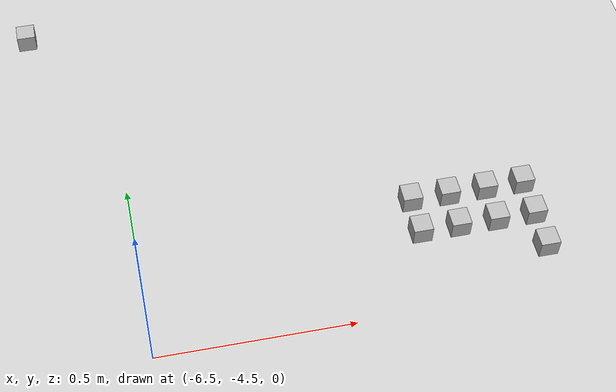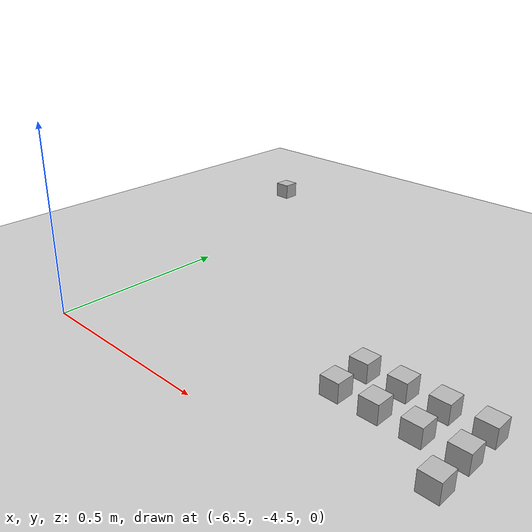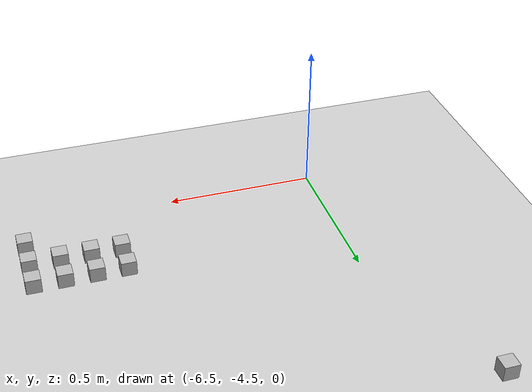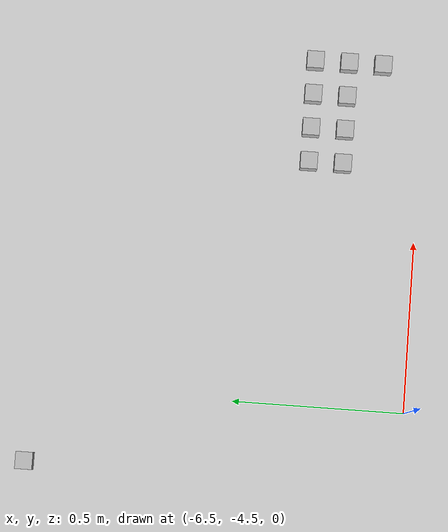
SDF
<sdf version="1.6">
 <world name="default">
  <model name="ground_plane">
   <static>1</static>
   <link name="link">
    <collision name="collision">
     <geometry><plane><normal>0 0 1</normal><size>100 100</size></plane></geometry>
     <surface><friction><ode><mu>100</mu><mu2>50</mu2></ode></friction></surface>
    </collision>
    <visual name="visual">
     <cast_shadows>0</cast_shadows>
     <geometry><plane><normal>0 0 1</normal><size>100 100</size></plane></geometry>
     <material>
      <script><uri>file://media/materials/scripts/gazebo.material</uri><name>Gazebo/Grey</name></script>
     </material>
    </visual>
   </link>
  </model>
  <model name="at55">
   <static>0</static>
   <link name="link">
    <inertial>
     <mass>0.01</mass>
     <inertia><ixx>4e-05</ixx><ixy>0</ixy><ixz>0</ixz><iyy>4e-05</iyy><iyz>0</iyz><izz>4e-05</izz></inertia>
    </inertial>
    <visual name="visual">
     <geometry><box><size>0.05 0.05 0.05</size></box></geometry>
     <material>
      <script>
       <uri>model://at0/materials/scripts</uri>
       <uri>model://at0/materials/textures</uri>
       <name>at0/Diffuse</name>
      </script>
     </material>
    </visual>
    <collision name="collision">
     <geometry><box><size>0.05 0.05 0.05</size></box></geometry>
     <surface><friction><ode><mu>0.8</mu><mu2>0.7</mu2></ode></friction></surface>
    </collision>
   </link>
   <pose>-5.48237 -4.37573 0.025 0 -0 0</pose>
  </model>
  <model name="at56">
   <static>0</static>
   <link name="link">
    <inertial>
     <mass>0.01</mass>
     <inertia><ixx>4e-05</ixx><ixy>0</ixy><ixz>0</ixz><iyy>4e-05</iyy><iyz>0</iyz><izz>4e-05</izz></inertia>
    </inertial>
    <visual name="visual">
     <geometry><box><size>0.05 0.05 0.05</size></box></geometry>
     <material>
      <script>
       <uri>model://at0/materials/scripts</uri>
       <uri>model://at0/materials/textures</uri>
       <name>at0/Diffuse</name>
      </script>
     </material>
    </visual>
    <collision name="collision">
     <geometry><box><size>0.05 0.05 0.05</size></box></geometry>
     <surface><friction><ode><mu>0.8</mu><mu2>0.7</mu2></ode></friction></surface>
    </collision>
   </link>
   <pose>-5.78237 -4.27573 0.025 0 -0 0</pose>
  </model>
  <model name="at57">
   <static>0</static>
   <link name="link">
    <inertial>
     <mass>0.01</mass>
     <inertia><ixx>4e-05</ixx><ixy>0</ixy><ixz>0</ixz><iyy>4e-05</iyy><iyz>0</iyz><izz>4e-05</izz></inertia>
    </inertial>
    <visual name="visual">
     <geometry><box><size>0.05 0.05 0.05</size></box></geometry>
     <material>
      <script>
       <uri>model://at0/materials/scripts</uri>
       <uri>model://at0/materials/textures</uri>
       <name>at0/Diffuse</name>
      </script>
     </material>
    </visual>
    <collision name="collision">
     <geometry><box><size>0.05 0.05 0.05</size></box></geometry>
     <surface><friction><ode><mu>0.8</mu><mu2>0.7</mu2></ode></friction></surface>
    </collision>
   </link>
   <pose>-5.68237 -4.27573 0.025 0 -0 0</pose>
  </model>
  <model name="at58">
   <static>0</static>
   <link name="link">
    <inertial>
     <mass>0.01</mass>
     <inertia><ixx>4e-05</ixx><ixy>0</ixy><ixz>0</ixz><iyy>4e-05</iyy><iyz>0</iyz><izz>4e-05</izz></inertia>
    </inertial>
    <visual name="visual">
     <geometry><box><size>0.05 0.05 0.05</size></box></geometry>
     <material>
      <script>
       <uri>model://at0/materials/scripts</uri>
       <uri>model://at0/materials/textures</uri>
       <name>at0/Diffuse</name>
      </script>
     </material>
    </visual>
    <collision name="collision">
     <geometry><box><size>0.05 0.05 0.05</size></box></geometry>
     <surface><friction><ode><mu>0.8</mu><mu2>0.7</mu2></ode></friction></surface>
    </collision>
   </link>
   <pose>-5.58237 -4.27573 0.025 0 -0 0</pose>
  </model>
  <model name="at59">
   <static>0</static>
   <link name="link">
    <inertial>
     <mass>0.01</mass>
     <inertia><ixx>4e-05</ixx><ixy>0</ixy><ixz>0</ixz><iyy>4e-05</iyy><iyz>0</iyz><izz>4e-05</izz></inertia>
    </inertial>
    <visual name="visual">
     <geometry><box><size>0.05 0.05 0.05</size></box></geometry>
     <material>
      <script>
       <uri>model://at0/materials/scripts</uri>
       <uri>model://at0/materials/textures</uri>
       <name>at0/Diffuse</name>
      </script>
     </material>
    </visual>
    <collision name="collision">
     <geometry><box><size>0.05 0.05 0.05</size></box></geometry>
     <surface><friction><ode><mu>0.8</mu><mu2>0.7</mu2></ode></friction></surface>
    </collision>
   </link>
   <pose>-5.48237 -4.27573 0.025 0 -0 0</pose>
  </model>
  <model name="at60">
   <static>0</static>
   <link name="link">
    <inertial>
     <mass>0.01</mass>
     <inertia><ixx>4e-05</ixx><ixy>0</ixy><ixz>0</ixz><iyy>4e-05</iyy><iyz>0</iyz><izz>4e-05</izz></inertia>
    </inertial>
    <visual name="visual">
     <geometry><box><size>0.05 0.05 0.05</size></box></geometry>
     <material>
      <script>
       <uri>model://at0/materials/scripts</uri>
       <uri>model://at0/materials/textures</uri>
       <name>at0/Diffuse</name>
      </script>
     </material>
    </visual>
    <collision name="collision">
     <geometry><box><size>0.05 0.05 0.05</size></box></geometry>
     <surface><friction><ode><mu>0.8</mu><mu2>0.7</mu2></ode></friction></surface>
    </collision>
   </link>
   <pose>-5.78237 -4.17573 0.025 0 -0 0</pose>
  </model>
  <model name="at61">
   <static>0</static>
   <link name="link">
    <inertial>
     <mass>0.01</mass>
     <inertia><ixx>4e-05</ixx><ixy>0</ixy><ixz>0</ixz><iyy>4e-05</iyy><iyz>0</iyz><izz>4e-05</izz></inertia>
    </inertial>
    <visual name="visual">
     <geometry><box><size>0.05 0.05 0.05</size></box></geometry>
     <material>
      <script>
       <uri>model://at0/materials/scripts</uri>
       <uri>model://at0/materials/textures</uri>
       <name>at0/Diffuse</name>
      </script>
     </material>
    </visual>
    <collision name="collision">
     <geometry><box><size>0.05 0.05 0.05</size></box></geometry>
     <surface><friction><ode><mu>0.8</mu><mu2>0.7</mu2></ode></friction></surface>
    </collision>
   </link>
   <pose>-5.68237 -4.17573 0.025 0 -0 0</pose>
  </model>
  <model name="at62">
   <static>0</static>
   <link name="link">
    <inertial>
     <mass>0.01</mass>
     <inertia><ixx>4e-05</ixx><ixy>0</ixy><ixz>0</ixz><iyy>4e-05</iyy><iyz>0</iyz><izz>4e-05</izz></inertia>
    </inertial>
    <visual name="visual">
     <geometry><box><size>0.05 0.05 0.05</size></box></geometry>
     <material>
      <script>
       <uri>model://at0/materials/scripts</uri>
       <uri>model://at0/materials/textures</uri>
       <name>at0/Diffuse</name>
      </script>
     </material>
    </visual>
    <collision name="collision">
     <geometry><box><size>0.05 0.05 0.05</size></box></geometry>
     <surface><friction><ode><mu>0.8</mu><mu2>0.7</mu2></ode></friction></surface>
    </collision>
   </link>
   <pose>-5.58237 -4.17573 0.025 0 -0 0</pose>
  </model>
  <model name="at63">
   <static>0</static>
   <link name="link">
    <inertial>
     <mass>0.01</mass>
     <inertia><ixx>4e-05</ixx><ixy>0</ixy><ixz>0</ixz><iyy>4e-05</iyy><iyz>0</iyz><izz>4e-05</izz></inertia>
    </inertial>
    <visual name="visual">
     <geometry><box><size>0.05 0.05 0.05</size></box></geometry>
     <material>
      <script>
       <uri>model://at0/materials/scripts</uri>
       <uri>model://at0/materials/textures</uri>
       <name>at0/Diffuse</name>
      </script>
     </material>
    </visual>
    <collision name="collision">
     <geometry><box><size>0.05 0.05 0.05</size></box></geometry>
     <surface><friction><ode><mu>0.8</mu><mu2>0.7</mu2></ode></friction></surface>
    </collision>
   </link>
   <pose>-5.48237 -4.17573 0.025 0 -0 0</pose>
  </model>
  <model name="at98">
   <static>0</static>
   <link name="link">
    <inertial>
     <mass>0.01</mass>
     <inertia><ixx>4e-05</ixx><ixy>0</ixy><ixz>0</ixz><iyy>4e-05</iyy><iyz>0</iyz><izz>4e-05</izz></inertia>
    </inertial>
    <visual name="visual">
     <geometry><box><size>0.05 0.05 0.05</size></box></geometry>
     <material>
      <script>
       <uri>model://at0/materials/scripts</uri>
       <uri>model://at0/materials/textures</uri>
       <name>at0/Diffuse</name>
      </script>
     </material>
    </visual>
    <collision name="collision">
     <geometry><box><size>0.05 0.05 0.05</size></box></geometry>
     <surface><friction><ode><mu>0.8</mu><mu2>0.7</mu2></ode></friction></surface>
    </collision>
   </link>
   <pose>-6.71208 -3.41336 0.025 0 -0 0</pose>
  </model>
 </world>
</sdf>
